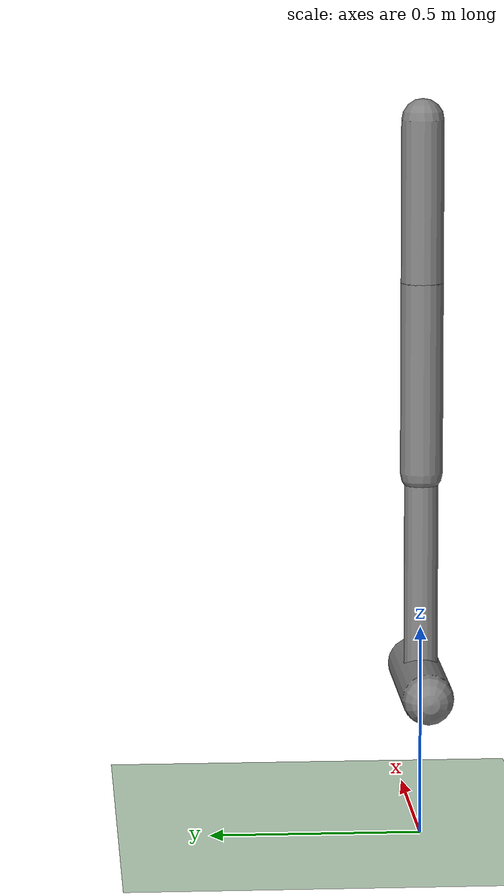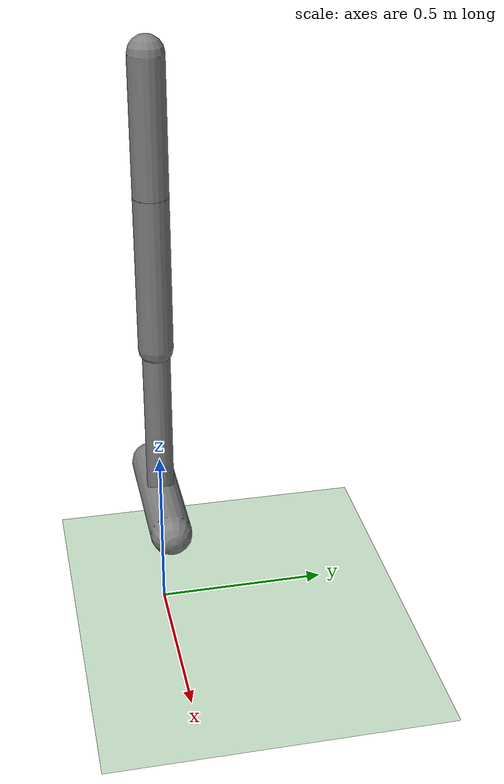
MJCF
<mujoco model="walker2d">
  <compiler angle="radian" inertiafromgeom="true"/>
  <default>
    <joint limited="true" damping=".05" armature=".1"/>
    <geom contype="1" conaffinity="1" condim="3" density="1000"
          friction="0.7 0.1 0.1"/>
  </default>
  <option timestep="0.002" integrator="Euler"/>
  <asset>
    <texture type="skybox" builtin="gradient" rgb1=".4 .5 .6"
             rgb2="0 0 0" width="100" height="100"/>
    <texture builtin="checker" height="100" name="texplane"
             rgb1="0 0 0" rgb2=".8 .8 .8" type="2d" width="100"/>
    <material name="MatPlane" reflectance="0.5" shininess="1"
              specular="1" texrepeat="60 60" texture="texplane"/>
  </asset>
  <worldbody>
    <light cutoff="100" diffuse="1 1 1" dir="0 0 -1.3"
           directional="true" pos="0 0 1.3" specular=".1 .1 .1"/>
    <geom conaffinity="1" condim="3" name="floor" pos="0 0 0"
          rgba=".8 .9 .8 1" size="40 40 40" type="plane"
          material="MatPlane"/>
    <body name="torso" pos="0 0 1.25">
      <camera name="track" mode="trackcom" pos="0 -5 0.8"
              xyaxes="1 0 0 0 0 1" fovy="45"/>
      <joint armature="0" damping="0" limited="false"
             name="rootx" type="slide" axis="1 0 0"/>
      <joint armature="0" damping="0" limited="false"
             name="rootz" type="slide" axis="0 0 1" ref="1.25"/>
      <joint armature="0" damping="0" limited="false"
             name="rooty" type="hinge" axis="0 1 0"/>
      <geom friction="0.9" fromto="0 0 0.07 0 0 0.45"
            name="torso_geom" size="0.05" type="capsule"/>
      <body name="thigh" pos="0 0 0.07">
        <joint axis="0 -1 0" name="thigh_joint"
               range="-2.6 0.05" type="hinge"/>
        <geom friction="0.9" fromto="0 0 0 0 0 -0.45"
              name="thigh_geom" size="0.05" type="capsule"/>
        <body name="leg" pos="0 0 -0.45">
          <joint axis="0 -1 0" name="leg_joint"
                 range="-2.6 -0.1" type="hinge"/>
          <geom friction="0.9" fromto="0 0 0 0 0 -0.5"
                name="leg_geom" size="0.04" type="capsule"/>
          <body name="foot" pos="0 0 -0.5">
            <joint axis="0 -1 0" name="foot_joint"
                   range="-0.8 0.8" type="hinge"/>
            <geom friction="0.9" fromto="-0.2 0 0 0.2 0 0"
                  name="foot_geom" size="0.06" type="capsule"
                  contype="1" conaffinity="1"/>
          </body>
        </body>
      </body>
      <body name="thigh_left" pos="0 0 0.07">
        <joint axis="0 -1 0" name="thigh_left_joint"
               range="-2.6 0.05" type="hinge"/>
        <geom friction="0.9" fromto="0 0 0 0 0 -0.45"
              name="thigh_left_geom" size="0.05" type="capsule"/>
        <body name="leg_left" pos="0 0 -0.45">
          <joint axis="0 -1 0" name="leg_left_joint"
                 range="-2.6 -0.1" type="hinge"/>
          <geom friction="0.9" fromto="0 0 0 0 0 -0.5"
                name="leg_left_geom" size="0.04" type="capsule"/>
          <body name="foot_left" pos="0 0 -0.5">
            <joint axis="0 -1 0" name="foot_left_joint"
                   range="-0.8 0.8" type="hinge"/>
            <geom friction="0.9" fromto="-0.2 0 0 0.2 0 0"
                  name="foot_left_geom" size="0.06" type="capsule"
                  contype="1" conaffinity="1"/>
          </body>
        </body>
      </body>
    </body>
  </worldbody>
  <actuator>
    <motor ctrllimited="true" ctrlrange="-1 1" gear="100" joint="thigh_joint"/>
    <motor ctrllimited="true" ctrlrange="-1 1" gear="100" joint="leg_joint"/>
    <motor ctrllimited="true" ctrlrange="-1 1" gear="100" joint="foot_joint"/>
    <motor ctrllimited="true" ctrlrange="-1 1" gear="100" joint="thigh_left_joint"/>
    <motor ctrllimited="true" ctrlrange="-1 1" gear="100" joint="leg_left_joint"/>
    <motor ctrllimited="true" ctrlrange="-1 1" gear="100" joint="foot_left_joint"/>
  </actuator>
</mujoco>
